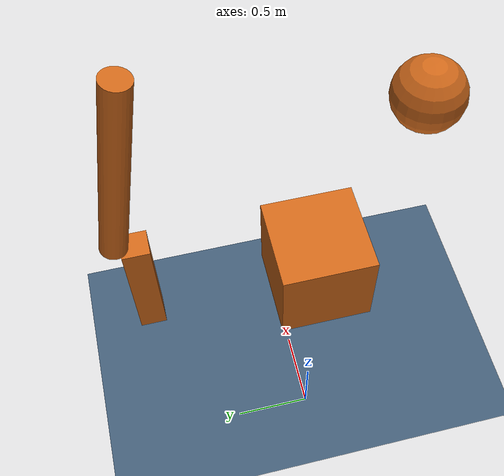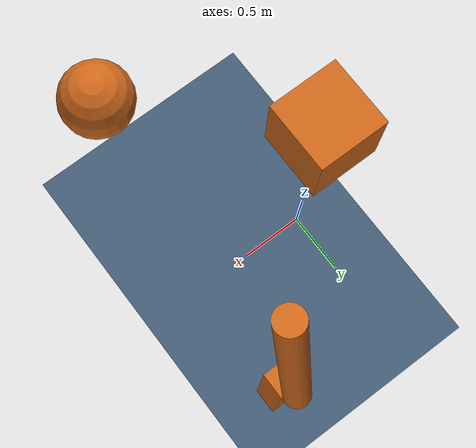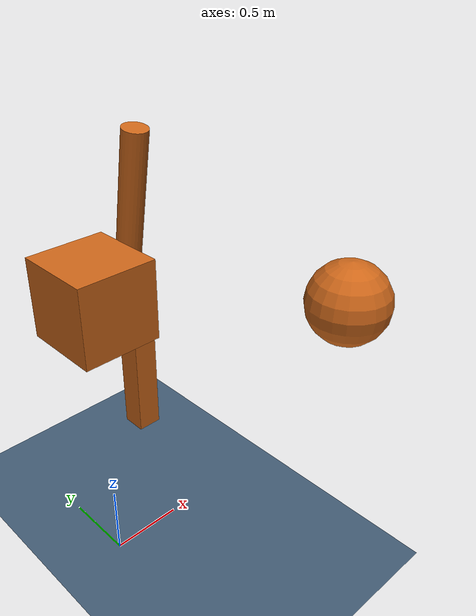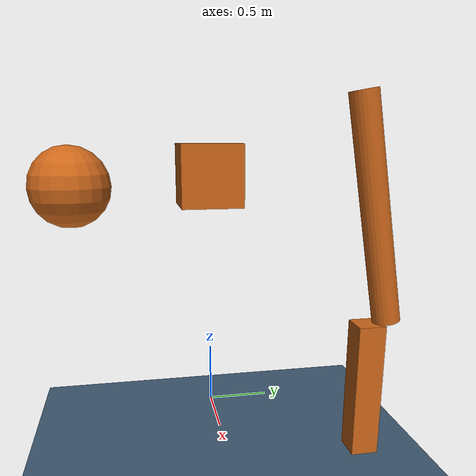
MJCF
<mujoco model="demo">
  <compiler angle="degree" coordinate="local"/>

  <!-- Gravity is enabled by default -->
  <option gravity="0 0 0" timestep="0.002">
    <flag warmstart="enable"/>
  </option>

  <!-- Visual settings -->
  <visual>
    <headlight ambient="0.5 0.5 0.5" diffuse="0.8 0.8 0.8"/>
    <rgba haze="0.15 0.25 0.35 1"/>  <!-- Haze for depth perception -->
    <global azimuth="10" elevation="-40"/>
  </visual>

  <!-- Assets: materials and textures -->
  <asset>
    <texture type="skybox" builtin="gradient" rgb1="0.3 0.5 0.7" rgb2="0 0 0" width="512" height="512"/>
    <texture name="grid" type="2d" builtin="checker" rgb1="0.2 0.3 0.4" rgb2="0.3 0.4 0.5" width="512" height="512"/>
    <material name="grid" texture="grid" texrepeat="1 1" texuniform="true" reflectance="0.2"/>
    <material name="robot" rgba="0.7 0.3 0.3 1"/>
    <material name="object" rgba="0.3 0.7 0.3 1"/>
  </asset>

  <!-- World body -->
  <worldbody>
    <!-- Floor -->
    <geom name="floor" type="plane" size="5 5 0.1" material="grid"/>

    <!-- Lighting -->
    <light pos="0 0 3" dir="0 0 -1" directional="true"/>

    <!-- Static objects -->
    <body name="static_box" pos="0 0 2">
      <freejoint/>
      <geom name="box" type="box" size="0.25 0.25 0.25" rgba="0.8 0.4 0.1 1" mass="0.2"/>
    </body>

    <!-- Free-falling objects -->
    <!-- TODO -->
    <body name="sphere1" pos="1 -1 2">
      <freejoint/>
      <geom name="sphere" type="sphere" size="0.25" rgba="0.8 0.4 0.1 1" mass="0.5"/>
    </body>

    <body name="2_link_robot_arm" pos="1 1 0.5">
      <geom name="base_arm" type="box" size="0.1 0.1 0.5" rgba="0.8 0.4 0.1 1" mass="0.2"/>

      <!-- child body origin at the hinge pivot (top of base) -->
      <body name="forearm" pos="0 0 0.5">
        <joint name="joint1" type="hinge" axis="0 1 0" pos="0 0 0" stiffness="0" damping="0" frictionloss="0" armature="0"/>

        <!-- Upright link: center is +0.8 above hinge -->
        <geom name="forearm_cylinder" type="cylinder" size="0.1 0.8" pos="0 0 0.8" rgba="0.8 0.4 0.1 1" euler="10 0 0" mass="0.2"/>
      </body>
    </body>

  </worldbody>
</mujoco>
